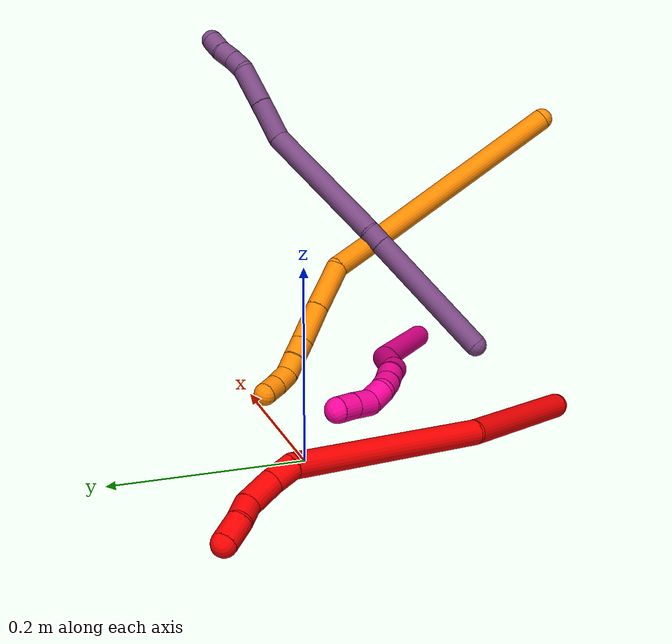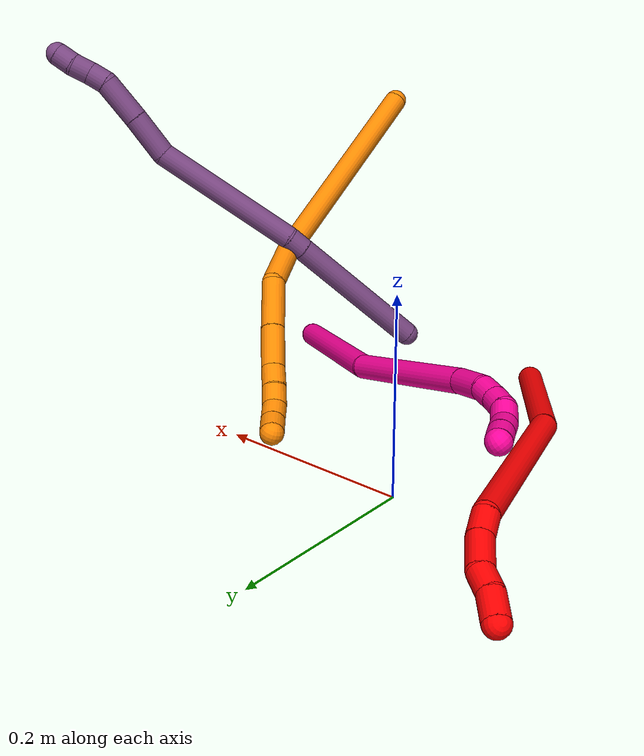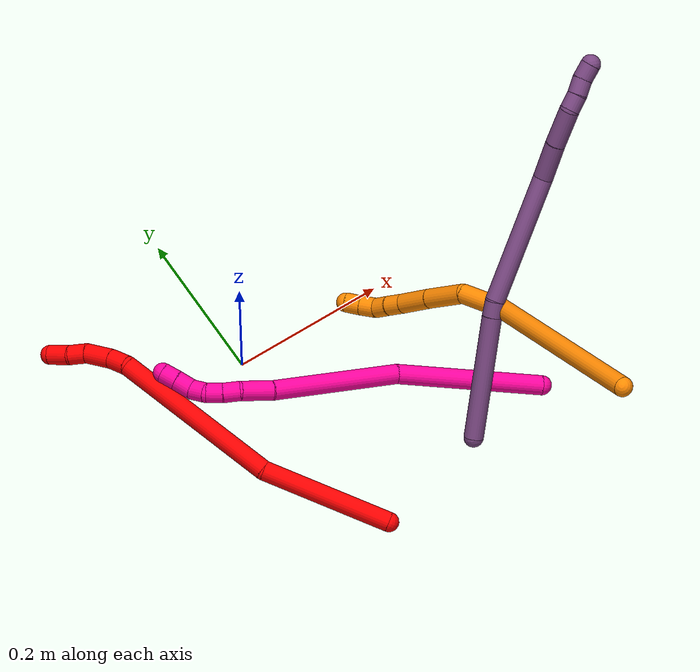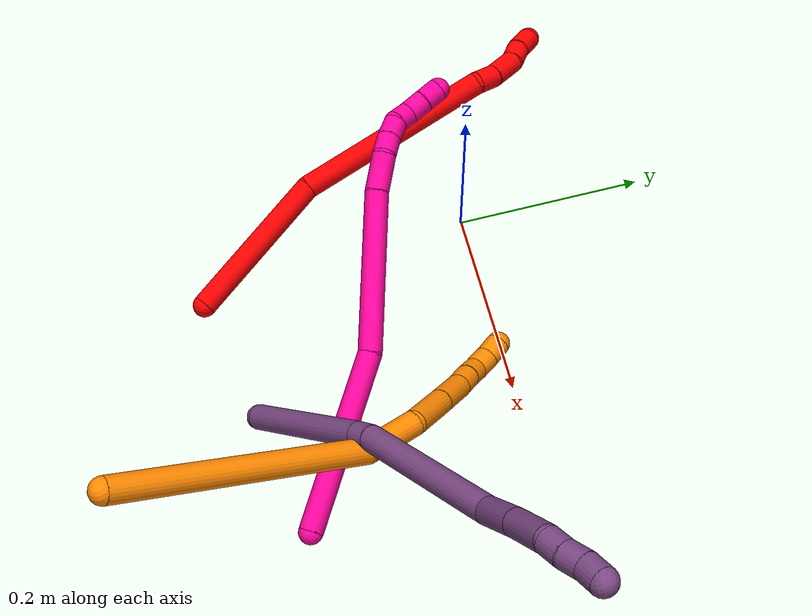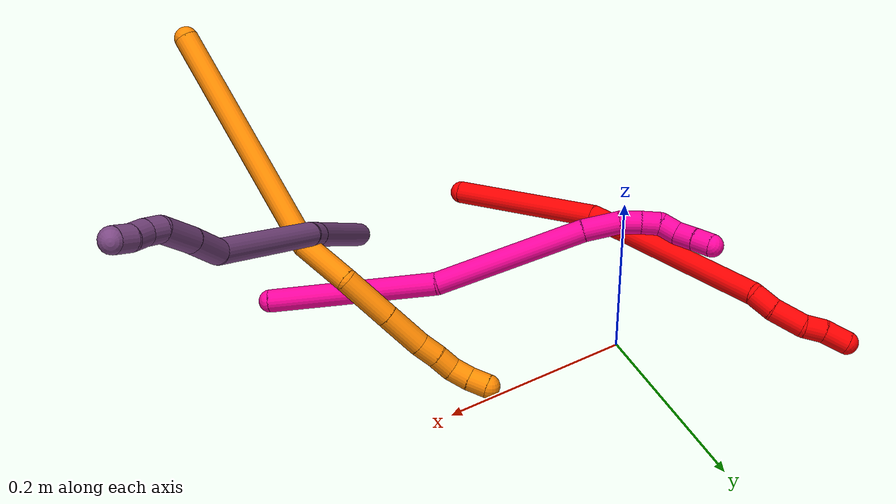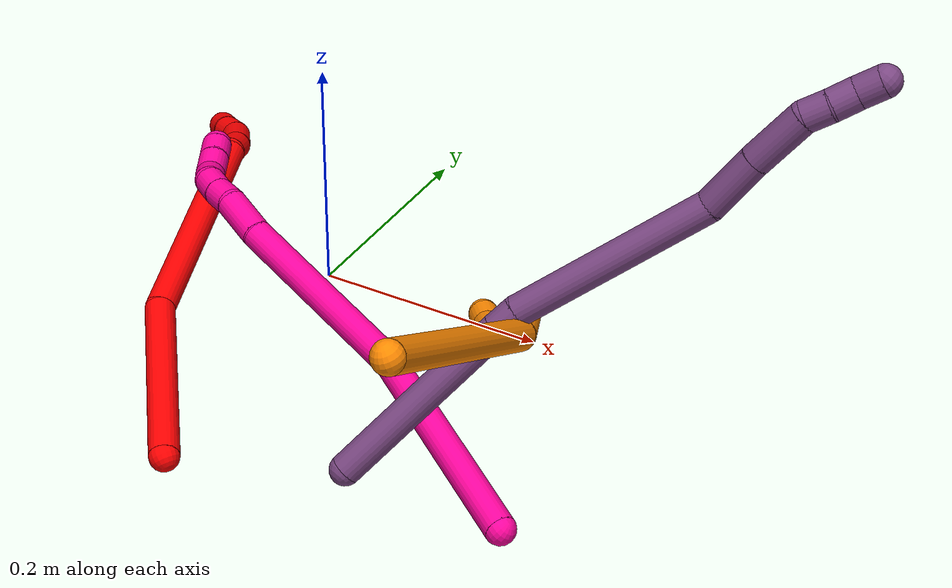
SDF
<sdf version="1.7">
 <world name="default">
  <model name="2">
   <static>0</static>
   <link name="2">
    <collision name="collision-cylinder-e_1_1_4">
     <pose>-0.015164 0.049821 -0.066 -2.49499 -0.181357 0.529995</pose>
     <geometry><cylinder><radius>0.0125</radius><length>0.168144</length></cylinder></geometry>
     <surface>
      <friction><ode><mu>1.16</mu><mu2>1.16</mu2><slip1>0</slip1><slip2>0</slip2></ode></friction>
      <contact><ode><kp>1e+06</kp><kd>1</kd><max_vel>0</max_vel><min_depth>0.001</min_depth></ode></contact>
     </surface>
    </collision>
    <visual name="visual-cylinder-e_1_1_4">
     <pose>-0.015164 0.049821 -0.066 -2.49499 -0.181357 0.529995</pose>
     <geometry><cylinder><radius>0.0125</radius><length>0.168144</length></cylinder></geometry>
     <material><ambient>1 0 0 1</ambient></material>
    </visual>
    <collision name="collision-cylinder-e_2_4_5">
     <pose>-0.078647 0.169644 -0.20134 -2.35143 -0.455944 1.01543</pose>
     <geometry><cylinder><radius>0.0125</radius><length>0.219481</length></cylinder></geometry>
     <surface>
      <friction><ode><mu>1.16</mu><mu2>1.16</mu2><slip1>0</slip1><slip2>0</slip2></ode></friction>
      <contact><ode><kp>1e+06</kp><kd>1</kd><max_vel>0</max_vel><min_depth>0.001</min_depth></ode></contact>
     </surface>
    </collision>
    <visual name="visual-cylinder-e_2_4_5">
     <pose>-0.078647 0.169644 -0.20134 -2.35143 -0.455944 1.01543</pose>
     <geometry><cylinder><radius>0.0125</radius><length>0.219481</length></cylinder></geometry>
     <material><ambient>1 0 0 1</ambient></material>
    </visual>
    <collision name="collision-cylinder-e_3_5_6">
     <pose>-0.129898 0.251446 -0.275568 -1.96364 -0.225537 0.335838</pose>
     <geometry><cylinder><radius>0.0125</radius><length>0.026208</length></cylinder></geometry>
     <surface>
      <friction><ode><mu>1.16</mu><mu2>1.16</mu2><slip1>0</slip1><slip2>0</slip2></ode></friction>
      <contact><ode><kp>1e+06</kp><kd>1</kd><max_vel>0</max_vel><min_depth>0.001</min_depth></ode></contact>
     </surface>
    </collision>
    <visual name="visual-cylinder-e_3_5_6">
     <pose>-0.129898 0.251446 -0.275568 -1.96364 -0.225537 0.335838</pose>
     <geometry><cylinder><radius>0.0125</radius><length>0.026208</length></cylinder></geometry>
     <material><ambient>1 0 0 1</ambient></material>
    </visual>
    <collision name="collision-cylinder-e_4_6_7">
     <pose>-0.133971 0.278695 -0.28926 -2.0887 -0.064187 0.110373</pose>
     <geometry><cylinder><radius>0.0125</radius><length>0.035636</length></cylinder></geometry>
     <surface>
      <friction><ode><mu>1.16</mu><mu2>1.16</mu2><slip1>0</slip1><slip2>0</slip2></ode></friction>
      <contact><ode><kp>1e+06</kp><kd>1</kd><max_vel>0</max_vel><min_depth>0.001</min_depth></ode></contact>
     </surface>
    </collision>
    <visual name="visual-cylinder-e_4_6_7">
     <pose>-0.133971 0.278695 -0.28926 -2.0887 -0.064187 0.110373</pose>
     <geometry><cylinder><radius>0.0125</radius><length>0.035636</length></cylinder></geometry>
     <material><ambient>1 0 0 1</ambient></material>
    </visual>
    <collision name="collision-cylinder-e_5_7_8">
     <pose>-0.132091 0.303021 -0.304606 -2.20599 0.267567 -0.520711</pose>
     <geometry><cylinder><radius>0.0125</radius><length>0.022868</length></cylinder></geometry>
     <surface>
      <friction><ode><mu>1.16</mu><mu2>1.16</mu2><slip1>0</slip1><slip2>0</slip2></ode></friction>
      <contact><ode><kp>1e+06</kp><kd>1</kd><max_vel>0</max_vel><min_depth>0.001</min_depth></ode></contact>
     </surface>
    </collision>
    <visual name="visual-cylinder-e_5_7_8">
     <pose>-0.132091 0.303021 -0.304606 -2.20599 0.267567 -0.520711</pose>
     <geometry><cylinder><radius>0.0125</radius><length>0.022868</length></cylinder></geometry>
     <material><ambient>1 0 0 1</ambient></material>
    </visual>
    <collision name="collision-cylinder-e_6_8_2">
     <pose>-0.127495 0.324177 -0.317316 -2.0362 0.113965 -0.184439</pose>
     <geometry><cylinder><radius>0.0125</radius><length>0.027662</length></cylinder></geometry>
     <surface>
      <friction><ode><mu>1.16</mu><mu2>1.16</mu2><slip1>0</slip1><slip2>0</slip2></ode></friction>
      <contact><ode><kp>1e+06</kp><kd>1</kd><max_vel>0</max_vel><min_depth>0.001</min_depth></ode></contact>
     </surface>
    </collision>
    <visual name="visual-cylinder-e_6_8_2">
     <pose>-0.127495 0.324177 -0.317316 -2.0362 0.113965 -0.184439</pose>
     <geometry><cylinder><radius>0.0125</radius><length>0.027662</length></cylinder></geometry>
     <material><ambient>1 0 0 1</ambient></material>
    </visual>
    <collision name="collision-sphere-2">
     <pose>-0.125922 0.336456 -0.323482 0 -0 0</pose>
     <geometry><sphere><radius>0.0125</radius></sphere></geometry>
     <surface>
      <friction><ode><mu>1.16</mu><mu2>1.16</mu2><slip1>0</slip1><slip2>0</slip2></ode></friction>
      <contact><ode><kp>1e+06</kp><kd>1</kd><max_vel>0</max_vel><min_depth>0.001</min_depth></ode></contact>
     </surface>
    </collision>
    <visual name="visual-sphere-2">
     <pose>-0.125922 0.336456 -0.323482 0 -0 0</pose>
     <geometry><sphere><radius>0.0125</radius></sphere></geometry>
     <material><ambient>1 0 0 1</ambient></material>
    </visual>
    <collision name="collision-sphere-4">
     <pose>-0.030327 0.099642 -0.132001 0 -0 0</pose>
     <geometry><sphere><radius>0.0125</radius></sphere></geometry>
     <surface>
      <friction><ode><mu>1.16</mu><mu2>1.16</mu2><slip1>0</slip1><slip2>0</slip2></ode></friction>
      <contact><ode><kp>1e+06</kp><kd>1</kd><max_vel>0</max_vel><min_depth>0.001</min_depth></ode></contact>
     </surface>
    </collision>
    <visual name="visual-sphere-4">
     <pose>-0.030327 0.099642 -0.132001 0 -0 0</pose>
     <geometry><sphere><radius>0.0125</radius></sphere></geometry>
     <material><ambient>1 0 0 1</ambient></material>
    </visual>
    <collision name="collision-sphere-1">
     <geometry><sphere><radius>0.0125</radius></sphere></geometry>
     <surface>
      <friction><ode><mu>1.16</mu><mu2>1.16</mu2><slip1>0</slip1><slip2>0</slip2></ode></friction>
      <contact><ode><kp>1e+06</kp><kd>1</kd><max_vel>0</max_vel><min_depth>0.001</min_depth></ode></contact>
     </surface>
    </collision>
    <visual name="visual-sphere-1">
     <geometry><sphere><radius>0.0125</radius></sphere></geometry>
     <material><ambient>1 0 0 1</ambient></material>
    </visual>
    <collision name="collision-sphere-8">
     <pose>-0.129068 0.311897 -0.311149 0 -0 0</pose>
     <geometry><sphere><radius>0.0125</radius></sphere></geometry>
     <surface>
      <friction><ode><mu>1.16</mu><mu2>1.16</mu2><slip1>0</slip1><slip2>0</slip2></ode></friction>
      <contact><ode><kp>1e+06</kp><kd>1</kd><max_vel>0</max_vel><min_depth>0.001</min_depth></ode></contact>
     </surface>
    </collision>
    <visual name="visual-sphere-8">
     <pose>-0.129068 0.311897 -0.311149 0 -0 0</pose>
     <geometry><sphere><radius>0.0125</radius></sphere></geometry>
     <material><ambient>1 0 0 1</ambient></material>
    </visual>
    <collision name="collision-sphere-5">
     <pose>-0.126967 0.239647 -0.270679 0 -0 0</pose>
     <geometry><sphere><radius>0.0125</radius></sphere></geometry>
     <surface>
      <friction><ode><mu>1.16</mu><mu2>1.16</mu2><slip1>0</slip1><slip2>0</slip2></ode></friction>
      <contact><ode><kp>1e+06</kp><kd>1</kd><max_vel>0</max_vel><min_depth>0.001</min_depth></ode></contact>
     </surface>
    </collision>
    <visual name="visual-sphere-5">
     <pose>-0.126967 0.239647 -0.270679 0 -0 0</pose>
     <geometry><sphere><radius>0.0125</radius></sphere></geometry>
     <material><ambient>1 0 0 1</ambient></material>
    </visual>
    <collision name="collision-sphere-6">
     <pose>-0.132828 0.263245 -0.280458 0 -0 0</pose>
     <geometry><sphere><radius>0.0125</radius></sphere></geometry>
     <surface>
      <friction><ode><mu>1.16</mu><mu2>1.16</mu2><slip1>0</slip1><slip2>0</slip2></ode></friction>
      <contact><ode><kp>1e+06</kp><kd>1</kd><max_vel>0</max_vel><min_depth>0.001</min_depth></ode></contact>
     </surface>
    </collision>
    <visual name="visual-sphere-6">
     <pose>-0.132828 0.263245 -0.280458 0 -0 0</pose>
     <geometry><sphere><radius>0.0125</radius></sphere></geometry>
     <material><ambient>1 0 0 1</ambient></material>
    </visual>
    <collision name="collision-sphere-7">
     <pose>-0.135114 0.294145 -0.298063 0 -0 0</pose>
     <geometry><sphere><radius>0.0125</radius></sphere></geometry>
     <surface>
      <friction><ode><mu>1.16</mu><mu2>1.16</mu2><slip1>0</slip1><slip2>0</slip2></ode></friction>
      <contact><ode><kp>1e+06</kp><kd>1</kd><max_vel>0</max_vel><min_depth>0.001</min_depth></ode></contact>
     </surface>
    </collision>
    <visual name="visual-sphere-7">
     <pose>-0.135114 0.294145 -0.298063 0 -0 0</pose>
     <geometry><sphere><radius>0.0125</radius></sphere></geometry>
     <material><ambient>1 0 0 1</ambient></material>
    </visual>
    <inertial>
     <pose>-0.069075 0.156059 -0.177123 0 -0 0</pose>
     <mass>0.5</mass>
     <inertia>
      <ixx>0.001644</ixx>
      <ixy>0</ixy>
      <ixz>0</ixz>
      <iyy>0.000551</iyy>
      <iyz>0</iyz>
      <izz>-0.000378</izz>
     </inertia>
    </inertial>
   </link>
   <pose>0.031894 -0.288582 0.012064 -2.30872 0.314336 -2.36888</pose>
  </model>
  <model name="18">
   <static>0</static>
   <link name="18">
    <collision name="collision-cylinder-e_1_1_4">
     <pose>-0.057688 0.070579 -0.020303 -1.85089 -0.665835 0.861085</pose>
     <geometry><cylinder><radius>0.0125</radius><length>0.186778</length></cylinder></geometry>
     <surface>
      <friction><ode><mu>1.16</mu><mu2>1.16</mu2><slip1>0</slip1><slip2>0</slip2></ode></friction>
      <contact><ode><kp>1e+06</kp><kd>1</kd><max_vel>0</max_vel><min_depth>0.001</min_depth></ode></contact>
     </surface>
    </collision>
    <visual name="visual-cylinder-e_1_1_4">
     <pose>-0.057688 0.070579 -0.020303 -1.85089 -0.665835 0.861085</pose>
     <geometry><cylinder><radius>0.0125</radius><length>0.186778</length></cylinder></geometry>
     <material><ambient>1 0.007843 0.615686 1</ambient></material>
    </visual>
    <collision name="collision-cylinder-e_2_4_5">
     <pose>-0.181581 0.18685 -0.063394 -2.03344 -0.913847 1.34284</pose>
     <geometry><cylinder><radius>0.0125</radius><length>0.167214</length></cylinder></geometry>
     <surface>
      <friction><ode><mu>1.16</mu><mu2>1.16</mu2><slip1>0</slip1><slip2>0</slip2></ode></friction>
      <contact><ode><kp>1e+06</kp><kd>1</kd><max_vel>0</max_vel><min_depth>0.001</min_depth></ode></contact>
     </surface>
    </collision>
    <visual name="visual-cylinder-e_2_4_5">
     <pose>-0.181581 0.18685 -0.063394 -2.03344 -0.913847 1.34284</pose>
     <geometry><cylinder><radius>0.0125</radius><length>0.167214</length></cylinder></geometry>
     <material><ambient>1 0.007843 0.615686 1</ambient></material>
    </visual>
    <collision name="collision-cylinder-e_3_5_6">
     <pose>-0.262144 0.246129 -0.091125 -1.91969 -0.78192 1.0639</pose>
     <geometry><cylinder><radius>0.0125</radius><length>0.040754</length></cylinder></geometry>
     <surface>
      <friction><ode><mu>1.16</mu><mu2>1.16</mu2><slip1>0</slip1><slip2>0</slip2></ode></friction>
      <contact><ode><kp>1e+06</kp><kd>1</kd><max_vel>0</max_vel><min_depth>0.001</min_depth></ode></contact>
     </surface>
    </collision>
    <visual name="visual-cylinder-e_3_5_6">
     <pose>-0.262144 0.246129 -0.091125 -1.91969 -0.78192 1.0639</pose>
     <geometry><cylinder><radius>0.0125</radius><length>0.040754</length></cylinder></geometry>
     <material><ambient>1 0.007843 0.615686 1</ambient></material>
    </visual>
    <collision name="collision-cylinder-e_4_6_7">
     <pose>-0.282215 0.267568 -0.101042 -2.13549 -0.551072 0.94925</pose>
     <geometry><cylinder><radius>0.0125</radius><length>0.021819</length></cylinder></geometry>
     <surface>
      <friction><ode><mu>1.16</mu><mu2>1.16</mu2><slip1>0</slip1><slip2>0</slip2></ode></friction>
      <contact><ode><kp>1e+06</kp><kd>1</kd><max_vel>0</max_vel><min_depth>0.001</min_depth></ode></contact>
     </surface>
    </collision>
    <visual name="visual-cylinder-e_4_6_7">
     <pose>-0.282215 0.267568 -0.101042 -2.13549 -0.551072 0.94925</pose>
     <geometry><cylinder><radius>0.0125</radius><length>0.021819</length></cylinder></geometry>
     <material><ambient>1 0.007843 0.615686 1</ambient></material>
    </visual>
    <collision name="collision-cylinder-e_5_7_8">
     <pose>-0.292961 0.283778 -0.109896 -2.0055 -0.499946 0.761089</pose>
     <geometry><cylinder><radius>0.0125</radius><length>0.021001</length></cylinder></geometry>
     <surface>
      <friction><ode><mu>1.16</mu><mu2>1.16</mu2><slip1>0</slip1><slip2>0</slip2></ode></friction>
      <contact><ode><kp>1e+06</kp><kd>1</kd><max_vel>0</max_vel><min_depth>0.001</min_depth></ode></contact>
     </surface>
    </collision>
    <visual name="visual-cylinder-e_5_7_8">
     <pose>-0.292961 0.283778 -0.109896 -2.0055 -0.499946 0.761089</pose>
     <geometry><cylinder><radius>0.0125</radius><length>0.021001</length></cylinder></geometry>
     <material><ambient>1 0.007843 0.615686 1</ambient></material>
    </visual>
    <collision name="collision-cylinder-e_6_8_9">
     <pose>-0.298367 0.30156 -0.117402 -1.93799 -0.036873 0.053683</pose>
     <geometry><cylinder><radius>0.0125</radius><length>0.020208</length></cylinder></geometry>
     <surface>
      <friction><ode><mu>1.16</mu><mu2>1.16</mu2><slip1>0</slip1><slip2>0</slip2></ode></friction>
      <contact><ode><kp>1e+06</kp><kd>1</kd><max_vel>0</max_vel><min_depth>0.001</min_depth></ode></contact>
     </surface>
    </collision>
    <visual name="visual-cylinder-e_6_8_9">
     <pose>-0.298367 0.30156 -0.117402 -1.93799 -0.036873 0.053683</pose>
     <geometry><cylinder><radius>0.0125</radius><length>0.020208</length></cylinder></geometry>
     <material><ambient>1 0.007843 0.615686 1</ambient></material>
    </visual>
    <collision name="collision-cylinder-e_7_9_10">
     <pose>-0.300913 0.321818 -0.120563 -1.52798 -0.197843 0.1896</pose>
     <geometry><cylinder><radius>0.0125</radius><length>0.022119</length></cylinder></geometry>
     <surface>
      <friction><ode><mu>1.16</mu><mu2>1.16</mu2><slip1>0</slip1><slip2>0</slip2></ode></friction>
      <contact><ode><kp>1e+06</kp><kd>1</kd><max_vel>0</max_vel><min_depth>0.001</min_depth></ode></contact>
     </surface>
    </collision>
    <visual name="visual-cylinder-e_7_9_10">
     <pose>-0.300913 0.321818 -0.120563 -1.52798 -0.197843 0.1896</pose>
     <geometry><cylinder><radius>0.0125</radius><length>0.022119</length></cylinder></geometry>
     <material><ambient>1 0.007843 0.615686 1</ambient></material>
    </visual>
    <collision name="collision-cylinder-e_8_10_2">
     <pose>-0.304944 0.342532 -0.120187 -1.57971 -0.185786 0.187441</pose>
     <geometry><cylinder><radius>0.0125</radius><length>0.020107</length></cylinder></geometry>
     <surface>
      <friction><ode><mu>1.16</mu><mu2>1.16</mu2><slip1>0</slip1><slip2>0</slip2></ode></friction>
      <contact><ode><kp>1e+06</kp><kd>1</kd><max_vel>0</max_vel><min_depth>0.001</min_depth></ode></contact>
     </surface>
    </collision>
    <visual name="visual-cylinder-e_8_10_2">
     <pose>-0.304944 0.342532 -0.120187 -1.57971 -0.185786 0.187441</pose>
     <geometry><cylinder><radius>0.0125</radius><length>0.020107</length></cylinder></geometry>
     <material><ambient>1 0.007843 0.615686 1</ambient></material>
    </visual>
    <collision name="collision-sphere-2">
     <pose>-0.306801 0.352412 -0.120275 0 -0 0</pose>
     <geometry><sphere><radius>0.0125</radius></sphere></geometry>
     <surface>
      <friction><ode><mu>1.16</mu><mu2>1.16</mu2><slip1>0</slip1><slip2>0</slip2></ode></friction>
      <contact><ode><kp>1e+06</kp><kd>1</kd><max_vel>0</max_vel><min_depth>0.001</min_depth></ode></contact>
     </surface>
    </collision>
    <visual name="visual-sphere-2">
     <pose>-0.306801 0.352412 -0.120275 0 -0 0</pose>
     <geometry><sphere><radius>0.0125</radius></sphere></geometry>
     <material><ambient>1 0.007843 0.615686 1</ambient></material>
    </visual>
    <collision name="collision-sphere-10">
     <pose>-0.303087 0.332652 -0.120099 0 -0 0</pose>
     <geometry><sphere><radius>0.0125</radius></sphere></geometry>
     <surface>
      <friction><ode><mu>1.16</mu><mu2>1.16</mu2><slip1>0</slip1><slip2>0</slip2></ode></friction>
      <contact><ode><kp>1e+06</kp><kd>1</kd><max_vel>0</max_vel><min_depth>0.001</min_depth></ode></contact>
     </surface>
    </collision>
    <visual name="visual-sphere-10">
     <pose>-0.303087 0.332652 -0.120099 0 -0 0</pose>
     <geometry><sphere><radius>0.0125</radius></sphere></geometry>
     <material><ambient>1 0.007843 0.615686 1</ambient></material>
    </visual>
    <collision name="collision-sphere-9">
     <pose>-0.298739 0.310985 -0.121027 0 -0 0</pose>
     <geometry><sphere><radius>0.0125</radius></sphere></geometry>
     <surface>
      <friction><ode><mu>1.16</mu><mu2>1.16</mu2><slip1>0</slip1><slip2>0</slip2></ode></friction>
      <contact><ode><kp>1e+06</kp><kd>1</kd><max_vel>0</max_vel><min_depth>0.001</min_depth></ode></contact>
     </surface>
    </collision>
    <visual name="visual-sphere-9">
     <pose>-0.298739 0.310985 -0.121027 0 -0 0</pose>
     <geometry><sphere><radius>0.0125</radius></sphere></geometry>
     <material><ambient>1 0.007843 0.615686 1</ambient></material>
    </visual>
    <collision name="collision-sphere-4">
     <pose>-0.115376 0.141158 -0.040605 0 -0 0</pose>
     <geometry><sphere><radius>0.0125</radius></sphere></geometry>
     <surface>
      <friction><ode><mu>1.16</mu><mu2>1.16</mu2><slip1>0</slip1><slip2>0</slip2></ode></friction>
      <contact><ode><kp>1e+06</kp><kd>1</kd><max_vel>0</max_vel><min_depth>0.001</min_depth></ode></contact>
     </surface>
    </collision>
    <visual name="visual-sphere-4">
     <pose>-0.115376 0.141158 -0.040605 0 -0 0</pose>
     <geometry><sphere><radius>0.0125</radius></sphere></geometry>
     <material><ambient>1 0.007843 0.615686 1</ambient></material>
    </visual>
    <collision name="collision-sphere-1">
     <geometry><sphere><radius>0.0125</radius></sphere></geometry>
     <surface>
      <friction><ode><mu>1.16</mu><mu2>1.16</mu2><slip1>0</slip1><slip2>0</slip2></ode></friction>
      <contact><ode><kp>1e+06</kp><kd>1</kd><max_vel>0</max_vel><min_depth>0.001</min_depth></ode></contact>
     </surface>
    </collision>
    <visual name="visual-sphere-1">
     <geometry><sphere><radius>0.0125</radius></sphere></geometry>
     <material><ambient>1 0.007843 0.615686 1</ambient></material>
    </visual>
    <collision name="collision-sphere-8">
     <pose>-0.297994 0.292136 -0.113777 0 -0 0</pose>
     <geometry><sphere><radius>0.0125</radius></sphere></geometry>
     <surface>
      <friction><ode><mu>1.16</mu><mu2>1.16</mu2><slip1>0</slip1><slip2>0</slip2></ode></friction>
      <contact><ode><kp>1e+06</kp><kd>1</kd><max_vel>0</max_vel><min_depth>0.001</min_depth></ode></contact>
     </surface>
    </collision>
    <visual name="visual-sphere-8">
     <pose>-0.297994 0.292136 -0.113777 0 -0 0</pose>
     <geometry><sphere><radius>0.0125</radius></sphere></geometry>
     <material><ambient>1 0.007843 0.615686 1</ambient></material>
    </visual>
    <collision name="collision-sphere-5">
     <pose>-0.247786 0.232542 -0.086182 0 -0 0</pose>
     <geometry><sphere><radius>0.0125</radius></sphere></geometry>
     <surface>
      <friction><ode><mu>1.16</mu><mu2>1.16</mu2><slip1>0</slip1><slip2>0</slip2></ode></friction>
      <contact><ode><kp>1e+06</kp><kd>1</kd><max_vel>0</max_vel><min_depth>0.001</min_depth></ode></contact>
     </surface>
    </collision>
    <visual name="visual-sphere-5">
     <pose>-0.247786 0.232542 -0.086182 0 -0 0</pose>
     <geometry><sphere><radius>0.0125</radius></sphere></geometry>
     <material><ambient>1 0.007843 0.615686 1</ambient></material>
    </visual>
    <collision name="collision-sphere-6">
     <pose>-0.276503 0.259717 -0.096068 0 -0 0</pose>
     <geometry><sphere><radius>0.0125</radius></sphere></geometry>
     <surface>
      <friction><ode><mu>1.16</mu><mu2>1.16</mu2><slip1>0</slip1><slip2>0</slip2></ode></friction>
      <contact><ode><kp>1e+06</kp><kd>1</kd><max_vel>0</max_vel><min_depth>0.001</min_depth></ode></contact>
     </surface>
    </collision>
    <visual name="visual-sphere-6">
     <pose>-0.276503 0.259717 -0.096068 0 -0 0</pose>
     <geometry><sphere><radius>0.0125</radius></sphere></geometry>
     <material><ambient>1 0.007843 0.615686 1</ambient></material>
    </visual>
    <collision name="collision-sphere-7">
     <pose>-0.287927 0.27542 -0.106016 0 -0 0</pose>
     <geometry><sphere><radius>0.0125</radius></sphere></geometry>
     <surface>
      <friction><ode><mu>1.16</mu><mu2>1.16</mu2><slip1>0</slip1><slip2>0</slip2></ode></friction>
      <contact><ode><kp>1e+06</kp><kd>1</kd><max_vel>0</max_vel><min_depth>0.001</min_depth></ode></contact>
     </surface>
    </collision>
    <visual name="visual-sphere-7">
     <pose>-0.287927 0.27542 -0.106016 0 -0 0</pose>
     <geometry><sphere><radius>0.0125</radius></sphere></geometry>
     <material><ambient>1 0.007843 0.615686 1</ambient></material>
    </visual>
    <inertial>
     <pose>-0.165896 0.172709 -0.060149 0 -0 0</pose>
     <mass>0.5</mass>
     <inertia><ixx>0.000893</ixx><ixy>0</ixy><ixz>0</ixz><iyy>0.000984</iyy><iyz>0</iyz><izz>7e-06</izz></inertia>
    </inertial>
   </link>
   <pose>0.29799 -0.23524 0.010942 -0.057665 0.682209 0.286445</pose>
  </model>
  <model name="19">
   <static>0</static>
   <link name="19">
    <collision name="collision-cylinder-e_1_1_4">
     <pose>0.050779 -0.090047 -0.074916 2.26473 0.409051 0.833028</pose>
     <geometry><cylinder><radius>0.0125</radius><length>0.255337</length></cylinder></geometry>
     <surface>
      <friction><ode><mu>1.16</mu><mu2>1.16</mu2><slip1>0</slip1><slip2>0</slip2></ode></friction>
      <contact><ode><kp>1e+06</kp><kd>1</kd><max_vel>0</max_vel><min_depth>0.001</min_depth></ode></contact>
     </surface>
    </collision>
    <visual name="visual-cylinder-e_1_1_4">
     <pose>0.050779 -0.090047 -0.074916 2.26473 0.409051 0.833028</pose>
     <geometry><cylinder><radius>0.0125</radius><length>0.255337</length></cylinder></geometry>
     <material><ambient>0.996078 0.537255 0 1</ambient></material>
    </visual>
    <collision name="collision-cylinder-e_2_4_5">
     <pose>0.119719 -0.199736 -0.159591 2.03189 0.69159 1.05307</pose>
     <geometry><cylinder><radius>0.0125</radius><length>0.056953</length></cylinder></geometry>
     <surface>
      <friction><ode><mu>1.16</mu><mu2>1.16</mu2><slip1>0</slip1><slip2>0</slip2></ode></friction>
      <contact><ode><kp>1e+06</kp><kd>1</kd><max_vel>0</max_vel><min_depth>0.001</min_depth></ode></contact>
     </surface>
    </collision>
    <visual name="visual-cylinder-e_2_4_5">
     <pose>0.119719 -0.199736 -0.159591 2.03189 0.69159 1.05307</pose>
     <geometry><cylinder><radius>0.0125</radius><length>0.056953</length></cylinder></geometry>
     <material><ambient>0.996078 0.537255 0 1</ambient></material>
    </visual>
    <collision name="collision-cylinder-e_3_5_6">
     <pose>0.159117 -0.22867 -0.185463 2.61857 0.851477 2.07523</pose>
     <geometry><cylinder><radius>0.0125</radius><length>0.056462</length></cylinder></geometry>
     <surface>
      <friction><ode><mu>1.16</mu><mu2>1.16</mu2><slip1>0</slip1><slip2>0</slip2></ode></friction>
      <contact><ode><kp>1e+06</kp><kd>1</kd><max_vel>0</max_vel><min_depth>0.001</min_depth></ode></contact>
     </surface>
    </collision>
    <visual name="visual-cylinder-e_3_5_6">
     <pose>0.159117 -0.22867 -0.185463 2.61857 0.851477 2.07523</pose>
     <geometry><cylinder><radius>0.0125</radius><length>0.056462</length></cylinder></geometry>
     <material><ambient>0.996078 0.537255 0 1</ambient></material>
    </visual>
    <collision name="collision-cylinder-e_4_6_7">
     <pose>0.197565 -0.244792 -0.214777 2.66406 0.858492 2.16407</pose>
     <geometry><cylinder><radius>0.0125</radius><length>0.045481</length></cylinder></geometry>
     <surface>
      <friction><ode><mu>1.16</mu><mu2>1.16</mu2><slip1>0</slip1><slip2>0</slip2></ode></friction>
      <contact><ode><kp>1e+06</kp><kd>1</kd><max_vel>0</max_vel><min_depth>0.001</min_depth></ode></contact>
     </surface>
    </collision>
    <visual name="visual-cylinder-e_4_6_7">
     <pose>0.197565 -0.244792 -0.214777 2.66406 0.858492 2.16407</pose>
     <geometry><cylinder><radius>0.0125</radius><length>0.045481</length></cylinder></geometry>
     <material><ambient>0.996078 0.537255 0 1</ambient></material>
    </visual>
    <collision name="collision-cylinder-e_5_7_8">
     <pose>0.223845 -0.255248 -0.233409 2.55306 0.946698 2.07299</pose>
     <geometry><cylinder><radius>0.0125</radius><length>0.022352</length></cylinder></geometry>
     <surface>
      <friction><ode><mu>1.16</mu><mu2>1.16</mu2><slip1>0</slip1><slip2>0</slip2></ode></friction>
      <contact><ode><kp>1e+06</kp><kd>1</kd><max_vel>0</max_vel><min_depth>0.001</min_depth></ode></contact>
     </surface>
    </collision>
    <visual name="visual-cylinder-e_5_7_8">
     <pose>0.223845 -0.255248 -0.233409 2.55306 0.946698 2.07299</pose>
     <geometry><cylinder><radius>0.0125</radius><length>0.022352</length></cylinder></geometry>
     <material><ambient>0.996078 0.537255 0 1</ambient></material>
    </visual>
    <collision name="collision-cylinder-e_6_8_9">
     <pose>0.241115 -0.262131 -0.244853 2.64502 0.875816 2.1491</pose>
     <geometry><cylinder><radius>0.0125</radius><length>0.021353</length></cylinder></geometry>
     <surface>
      <friction><ode><mu>1.16</mu><mu2>1.16</mu2><slip1>0</slip1><slip2>0</slip2></ode></friction>
      <contact><ode><kp>1e+06</kp><kd>1</kd><max_vel>0</max_vel><min_depth>0.001</min_depth></ode></contact>
     </surface>
    </collision>
    <visual name="visual-cylinder-e_6_8_9">
     <pose>0.241115 -0.262131 -0.244853 2.64502 0.875816 2.1491</pose>
     <geometry><cylinder><radius>0.0125</radius><length>0.021353</length></cylinder></geometry>
     <material><ambient>0.996078 0.537255 0 1</ambient></material>
    </visual>
    <collision name="collision-cylinder-e_7_9_10">
     <pose>0.257681 -0.271379 -0.253504 1.98583 0.906791 1.28335</pose>
     <geometry><cylinder><radius>0.0125</radius><length>0.021245</length></cylinder></geometry>
     <surface>
      <friction><ode><mu>1.16</mu><mu2>1.16</mu2><slip1>0</slip1><slip2>0</slip2></ode></friction>
      <contact><ode><kp>1e+06</kp><kd>1</kd><max_vel>0</max_vel><min_depth>0.001</min_depth></ode></contact>
     </surface>
    </collision>
    <visual name="visual-cylinder-e_7_9_10">
     <pose>0.257681 -0.271379 -0.253504 1.98583 0.906791 1.28335</pose>
     <geometry><cylinder><radius>0.0125</radius><length>0.021245</length></cylinder></geometry>
     <material><ambient>0.996078 0.537255 0 1</ambient></material>
    </visual>
    <collision name="collision-cylinder-e_8_10_2">
     <pose>0.274368 -0.283536 -0.257172 1.73614 0.926475 1.06568</pose>
     <geometry><cylinder><radius>0.0125</radius><length>0.020817</length></cylinder></geometry>
     <surface>
      <friction><ode><mu>1.16</mu><mu2>1.16</mu2><slip1>0</slip1><slip2>0</slip2></ode></friction>
      <contact><ode><kp>1e+06</kp><kd>1</kd><max_vel>0</max_vel><min_depth>0.001</min_depth></ode></contact>
     </surface>
    </collision>
    <visual name="visual-cylinder-e_8_10_2">
     <pose>0.274368 -0.283536 -0.257172 1.73614 0.926475 1.06568</pose>
     <geometry><cylinder><radius>0.0125</radius><length>0.020817</length></cylinder></geometry>
     <material><ambient>0.996078 0.537255 0 1</ambient></material>
    </visual>
    <collision name="collision-sphere-2">
     <pose>0.28269 -0.289703 -0.258201 0 -0 0</pose>
     <geometry><sphere><radius>0.0125</radius></sphere></geometry>
     <surface>
      <friction><ode><mu>1.16</mu><mu2>1.16</mu2><slip1>0</slip1><slip2>0</slip2></ode></friction>
      <contact><ode><kp>1e+06</kp><kd>1</kd><max_vel>0</max_vel><min_depth>0.001</min_depth></ode></contact>
     </surface>
    </collision>
    <visual name="visual-sphere-2">
     <pose>0.28269 -0.289703 -0.258201 0 -0 0</pose>
     <geometry><sphere><radius>0.0125</radius></sphere></geometry>
     <material><ambient>0.996078 0.537255 0 1</ambient></material>
    </visual>
    <collision name="collision-sphere-10">
     <pose>0.266046 -0.277369 -0.256143 0 -0 0</pose>
     <geometry><sphere><radius>0.0125</radius></sphere></geometry>
     <surface>
      <friction><ode><mu>1.16</mu><mu2>1.16</mu2><slip1>0</slip1><slip2>0</slip2></ode></friction>
      <contact><ode><kp>1e+06</kp><kd>1</kd><max_vel>0</max_vel><min_depth>0.001</min_depth></ode></contact>
     </surface>
    </collision>
    <visual name="visual-sphere-10">
     <pose>0.266046 -0.277369 -0.256143 0 -0 0</pose>
     <geometry><sphere><radius>0.0125</radius></sphere></geometry>
     <material><ambient>0.996078 0.537255 0 1</ambient></material>
    </visual>
    <collision name="collision-sphere-9">
     <pose>0.249315 -0.265388 -0.250864 0 -0 0</pose>
     <geometry><sphere><radius>0.0125</radius></sphere></geometry>
     <surface>
      <friction><ode><mu>1.16</mu><mu2>1.16</mu2><slip1>0</slip1><slip2>0</slip2></ode></friction>
      <contact><ode><kp>1e+06</kp><kd>1</kd><max_vel>0</max_vel><min_depth>0.001</min_depth></ode></contact>
     </surface>
    </collision>
    <visual name="visual-sphere-9">
     <pose>0.249315 -0.265388 -0.250864 0 -0 0</pose>
     <geometry><sphere><radius>0.0125</radius></sphere></geometry>
     <material><ambient>0.996078 0.537255 0 1</ambient></material>
    </visual>
    <collision name="collision-sphere-4">
     <pose>0.101558 -0.180093 -0.149832 0 -0 0</pose>
     <geometry><sphere><radius>0.0125</radius></sphere></geometry>
     <surface>
      <friction><ode><mu>1.16</mu><mu2>1.16</mu2><slip1>0</slip1><slip2>0</slip2></ode></friction>
      <contact><ode><kp>1e+06</kp><kd>1</kd><max_vel>0</max_vel><min_depth>0.001</min_depth></ode></contact>
     </surface>
    </collision>
    <visual name="visual-sphere-4">
     <pose>0.101558 -0.180093 -0.149832 0 -0 0</pose>
     <geometry><sphere><radius>0.0125</radius></sphere></geometry>
     <material><ambient>0.996078 0.537255 0 1</ambient></material>
    </visual>
    <collision name="collision-sphere-1">
     <geometry><sphere><radius>0.0125</radius></sphere></geometry>
     <surface>
      <friction><ode><mu>1.16</mu><mu2>1.16</mu2><slip1>0</slip1><slip2>0</slip2></ode></friction>
      <contact><ode><kp>1e+06</kp><kd>1</kd><max_vel>0</max_vel><min_depth>0.001</min_depth></ode></contact>
     </surface>
    </collision>
    <visual name="visual-sphere-1">
     <geometry><sphere><radius>0.0125</radius></sphere></geometry>
     <material><ambient>0.996078 0.537255 0 1</ambient></material>
    </visual>
    <collision name="collision-sphere-8">
     <pose>0.232914 -0.258874 -0.238841 0 -0 0</pose>
     <geometry><sphere><radius>0.0125</radius></sphere></geometry>
     <surface>
      <friction><ode><mu>1.16</mu><mu2>1.16</mu2><slip1>0</slip1><slip2>0</slip2></ode></friction>
      <contact><ode><kp>1e+06</kp><kd>1</kd><max_vel>0</max_vel><min_depth>0.001</min_depth></ode></contact>
     </surface>
    </collision>
    <visual name="visual-sphere-8">
     <pose>0.232914 -0.258874 -0.238841 0 -0 0</pose>
     <geometry><sphere><radius>0.0125</radius></sphere></geometry>
     <material><ambient>0.996078 0.537255 0 1</ambient></material>
    </visual>
    <collision name="collision-sphere-5">
     <pose>0.13788 -0.219379 -0.169349 0 -0 0</pose>
     <geometry><sphere><radius>0.0125</radius></sphere></geometry>
     <surface>
      <friction><ode><mu>1.16</mu><mu2>1.16</mu2><slip1>0</slip1><slip2>0</slip2></ode></friction>
      <contact><ode><kp>1e+06</kp><kd>1</kd><max_vel>0</max_vel><min_depth>0.001</min_depth></ode></contact>
     </surface>
    </collision>
    <visual name="visual-sphere-5">
     <pose>0.13788 -0.219379 -0.169349 0 -0 0</pose>
     <geometry><sphere><radius>0.0125</radius></sphere></geometry>
     <material><ambient>0.996078 0.537255 0 1</ambient></material>
    </visual>
    <collision name="collision-sphere-6">
     <pose>0.180354 -0.237961 -0.201577 0 -0 0</pose>
     <geometry><sphere><radius>0.0125</radius></sphere></geometry>
     <surface>
      <friction><ode><mu>1.16</mu><mu2>1.16</mu2><slip1>0</slip1><slip2>0</slip2></ode></friction>
      <contact><ode><kp>1e+06</kp><kd>1</kd><max_vel>0</max_vel><min_depth>0.001</min_depth></ode></contact>
     </surface>
    </collision>
    <visual name="visual-sphere-6">
     <pose>0.180354 -0.237961 -0.201577 0 -0 0</pose>
     <geometry><sphere><radius>0.0125</radius></sphere></geometry>
     <material><ambient>0.996078 0.537255 0 1</ambient></material>
    </visual>
    <collision name="collision-sphere-7">
     <pose>0.214776 -0.251622 -0.227977 0 -0 0</pose>
     <geometry><sphere><radius>0.0125</radius></sphere></geometry>
     <surface>
      <friction><ode><mu>1.16</mu><mu2>1.16</mu2><slip1>0</slip1><slip2>0</slip2></ode></friction>
      <contact><ode><kp>1e+06</kp><kd>1</kd><max_vel>0</max_vel><min_depth>0.001</min_depth></ode></contact>
     </surface>
    </collision>
    <visual name="visual-sphere-7">
     <pose>0.214776 -0.251622 -0.227977 0 -0 0</pose>
     <geometry><sphere><radius>0.0125</radius></sphere></geometry>
     <material><ambient>0.996078 0.537255 0 1</ambient></material>
    </visual>
    <inertial>
     <pose>0.118183 -0.162766 -0.139285 0 -0 0</pose>
     <mass>0.5</mass>
     <inertia>
      <ixx>0.001861</ixx>
      <ixy>0</ixy>
      <ixz>0</ixz>
      <iyy>0.000701</iyy>
      <iyz>0</iyz>
      <izz>0.000397</izz>
     </inertia>
    </inertial>
   </link>
   <pose>0.297401 -0.388405 0.265195 -0.229589 0.249431 2.90732</pose>
  </model>
  <model name="20">
   <static>0</static>
   <link name="20">
    <collision name="collision-cylinder-e_1_1_4">
     <pose>0.025761 0.006328 0.074345 -0.084916 0.332446 -0.014255</pose>
     <geometry><cylinder><radius>0.0125</radius><length>0.157872</length></cylinder></geometry>
     <surface>
      <friction><ode><mu>1.16</mu><mu2>1.16</mu2><slip1>0</slip1><slip2>0</slip2></ode></friction>
      <contact><ode><kp>1e+06</kp><kd>1</kd><max_vel>0</max_vel><min_depth>0.001</min_depth></ode></contact>
     </surface>
    </collision>
    <visual name="visual-cylinder-e_1_1_4">
     <pose>0.025761 0.006328 0.074345 -0.084916 0.332446 -0.014255</pose>
     <geometry><cylinder><radius>0.0125</radius><length>0.157872</length></cylinder></geometry>
     <material><ambient>0.478431 0.278431 0.509804 1</ambient></material>
    </visual>
    <collision name="collision-cylinder-e_2_4_5">
     <pose>0.055162 0.013779 0.158121 -0.118433 0.365904 -0.021937</pose>
     <geometry><cylinder><radius>0.0125</radius><length>0.020342</length></cylinder></geometry>
     <surface>
      <friction><ode><mu>1.16</mu><mu2>1.16</mu2><slip1>0</slip1><slip2>0</slip2></ode></friction>
      <contact><ode><kp>1e+06</kp><kd>1</kd><max_vel>0</max_vel><min_depth>0.001</min_depth></ode></contact>
     </surface>
    </collision>
    <visual name="visual-cylinder-e_2_4_5">
     <pose>0.055162 0.013779 0.158121 -0.118433 0.365904 -0.021937</pose>
     <geometry><cylinder><radius>0.0125</radius><length>0.020342</length></cylinder></geometry>
     <material><ambient>0.478431 0.278431 0.509804 1</ambient></material>
    </visual>
    <collision name="collision-cylinder-e_3_5_6">
     <pose>0.092649 0.039694 0.237715 -0.339667 0.426892 -0.074304</pose>
     <geometry><cylinder><radius>0.0125</radius><length>0.163502</length></cylinder></geometry>
     <surface>
      <friction><ode><mu>1.16</mu><mu2>1.16</mu2><slip1>0</slip1><slip2>0</slip2></ode></friction>
      <contact><ode><kp>1e+06</kp><kd>1</kd><max_vel>0</max_vel><min_depth>0.001</min_depth></ode></contact>
     </surface>
    </collision>
    <visual name="visual-cylinder-e_3_5_6">
     <pose>0.092649 0.039694 0.237715 -0.339667 0.426892 -0.074304</pose>
     <geometry><cylinder><radius>0.0125</radius><length>0.163502</length></cylinder></geometry>
     <material><ambient>0.478431 0.278431 0.509804 1</ambient></material>
    </visual>
    <collision name="collision-cylinder-e_4_6_7">
     <pose>0.140168 0.064532 0.327825 -0.002266 0.600813 -0.000702</pose>
     <geometry><cylinder><radius>0.0125</radius><length>0.048364</length></cylinder></geometry>
     <surface>
      <friction><ode><mu>1.16</mu><mu2>1.16</mu2><slip1>0</slip1><slip2>0</slip2></ode></friction>
      <contact><ode><kp>1e+06</kp><kd>1</kd><max_vel>0</max_vel><min_depth>0.001</min_depth></ode></contact>
     </surface>
    </collision>
    <visual name="visual-cylinder-e_4_6_7">
     <pose>0.140168 0.064532 0.327825 -0.002266 0.600813 -0.000702</pose>
     <geometry><cylinder><radius>0.0125</radius><length>0.048364</length></cylinder></geometry>
     <material><ambient>0.478431 0.278431 0.509804 1</ambient></material>
    </visual>
    <collision name="collision-cylinder-e_5_7_8">
     <pose>0.167797 0.065991 0.367473 -0.071636 0.615228 -0.022767</pose>
     <geometry><cylinder><radius>0.0125</radius><length>0.048373</length></cylinder></geometry>
     <surface>
      <friction><ode><mu>1.16</mu><mu2>1.16</mu2><slip1>0</slip1><slip2>0</slip2></ode></friction>
      <contact><ode><kp>1e+06</kp><kd>1</kd><max_vel>0</max_vel><min_depth>0.001</min_depth></ode></contact>
     </surface>
    </collision>
    <visual name="visual-cylinder-e_5_7_8">
     <pose>0.167797 0.065991 0.367473 -0.071636 0.615228 -0.022767</pose>
     <geometry><cylinder><radius>0.0125</radius><length>0.048373</length></cylinder></geometry>
     <material><ambient>0.478431 0.278431 0.509804 1</ambient></material>
    </visual>
    <collision name="collision-cylinder-e_6_8_9">
     <pose>0.186264 0.071525 0.395415 -0.463648 0.454929 -0.109177</pose>
     <geometry><cylinder><radius>0.0125</radius><length>0.020514</length></cylinder></geometry>
     <surface>
      <friction><ode><mu>1.16</mu><mu2>1.16</mu2><slip1>0</slip1><slip2>0</slip2></ode></friction>
      <contact><ode><kp>1e+06</kp><kd>1</kd><max_vel>0</max_vel><min_depth>0.001</min_depth></ode></contact>
     </surface>
    </collision>
    <visual name="visual-cylinder-e_6_8_9">
     <pose>0.186264 0.071525 0.395415 -0.463648 0.454929 -0.109177</pose>
     <geometry><cylinder><radius>0.0125</radius><length>0.020514</length></cylinder></geometry>
     <material><ambient>0.478431 0.278431 0.509804 1</ambient></material>
    </visual>
    <collision name="collision-cylinder-e_7_9_10">
     <pose>0.193933 0.079512 0.412583 -0.408713 0.314272 -0.065651</pose>
     <geometry><cylinder><radius>0.0125</radius><length>0.020458</length></cylinder></geometry>
     <surface>
      <friction><ode><mu>1.16</mu><mu2>1.16</mu2><slip1>0</slip1><slip2>0</slip2></ode></friction>
      <contact><ode><kp>1e+06</kp><kd>1</kd><max_vel>0</max_vel><min_depth>0.001</min_depth></ode></contact>
     </surface>
    </collision>
    <visual name="visual-cylinder-e_7_9_10">
     <pose>0.193933 0.079512 0.412583 -0.408713 0.314272 -0.065651</pose>
     <geometry><cylinder><radius>0.0125</radius><length>0.020458</length></cylinder></geometry>
     <material><ambient>0.478431 0.278431 0.509804 1</ambient></material>
    </visual>
    <collision name="collision-cylinder-e_8_10_2">
     <pose>0.202282 0.087216 0.429523 -0.446638 0.528445 -0.122732</pose>
     <geometry><cylinder><radius>0.0125</radius><length>0.020575</length></cylinder></geometry>
     <surface>
      <friction><ode><mu>1.16</mu><mu2>1.16</mu2><slip1>0</slip1><slip2>0</slip2></ode></friction>
      <contact><ode><kp>1e+06</kp><kd>1</kd><max_vel>0</max_vel><min_depth>0.001</min_depth></ode></contact>
     </surface>
    </collision>
    <visual name="visual-cylinder-e_8_10_2">
     <pose>0.202282 0.087216 0.429523 -0.446638 0.528445 -0.122732</pose>
     <geometry><cylinder><radius>0.0125</radius><length>0.020575</length></cylinder></geometry>
     <material><ambient>0.478431 0.278431 0.509804 1</ambient></material>
    </visual>
    <collision name="collision-sphere-2">
     <pose>0.207468 0.091053 0.437536 0 -0 0</pose>
     <geometry><sphere><radius>0.0125</radius></sphere></geometry>
     <surface>
      <friction><ode><mu>1.16</mu><mu2>1.16</mu2><slip1>0</slip1><slip2>0</slip2></ode></friction>
      <contact><ode><kp>1e+06</kp><kd>1</kd><max_vel>0</max_vel><min_depth>0.001</min_depth></ode></contact>
     </surface>
    </collision>
    <visual name="visual-sphere-2">
     <pose>0.207468 0.091053 0.437536 0 -0 0</pose>
     <geometry><sphere><radius>0.0125</radius></sphere></geometry>
     <material><ambient>0.478431 0.278431 0.509804 1</ambient></material>
    </visual>
    <collision name="collision-sphere-10">
     <pose>0.197095 0.083378 0.42151 0 -0 0</pose>
     <geometry><sphere><radius>0.0125</radius></sphere></geometry>
     <surface>
      <friction><ode><mu>1.16</mu><mu2>1.16</mu2><slip1>0</slip1><slip2>0</slip2></ode></friction>
      <contact><ode><kp>1e+06</kp><kd>1</kd><max_vel>0</max_vel><min_depth>0.001</min_depth></ode></contact>
     </surface>
    </collision>
    <visual name="visual-sphere-10">
     <pose>0.197095 0.083378 0.42151 0 -0 0</pose>
     <geometry><sphere><radius>0.0125</radius></sphere></geometry>
     <material><ambient>0.478431 0.278431 0.509804 1</ambient></material>
    </visual>
    <collision name="collision-sphere-9">
     <pose>0.190771 0.075646 0.403657 0 -0 0</pose>
     <geometry><sphere><radius>0.0125</radius></sphere></geometry>
     <surface>
      <friction><ode><mu>1.16</mu><mu2>1.16</mu2><slip1>0</slip1><slip2>0</slip2></ode></friction>
      <contact><ode><kp>1e+06</kp><kd>1</kd><max_vel>0</max_vel><min_depth>0.001</min_depth></ode></contact>
     </surface>
    </collision>
    <visual name="visual-sphere-9">
     <pose>0.190771 0.075646 0.403657 0 -0 0</pose>
     <geometry><sphere><radius>0.0125</radius></sphere></geometry>
     <material><ambient>0.478431 0.278431 0.509804 1</ambient></material>
    </visual>
    <collision name="collision-sphere-4">
     <pose>0.051522 0.012657 0.14869 0 -0 0</pose>
     <geometry><sphere><radius>0.0125</radius></sphere></geometry>
     <surface>
      <friction><ode><mu>1.16</mu><mu2>1.16</mu2><slip1>0</slip1><slip2>0</slip2></ode></friction>
      <contact><ode><kp>1e+06</kp><kd>1</kd><max_vel>0</max_vel><min_depth>0.001</min_depth></ode></contact>
     </surface>
    </collision>
    <visual name="visual-sphere-4">
     <pose>0.051522 0.012657 0.14869 0 -0 0</pose>
     <geometry><sphere><radius>0.0125</radius></sphere></geometry>
     <material><ambient>0.478431 0.278431 0.509804 1</ambient></material>
    </visual>
    <collision name="collision-sphere-1">
     <geometry><sphere><radius>0.0125</radius></sphere></geometry>
     <surface>
      <friction><ode><mu>1.16</mu><mu2>1.16</mu2><slip1>0</slip1><slip2>0</slip2></ode></friction>
      <contact><ode><kp>1e+06</kp><kd>1</kd><max_vel>0</max_vel><min_depth>0.001</min_depth></ode></contact>
     </surface>
    </collision>
    <visual name="visual-sphere-1">
     <geometry><sphere><radius>0.0125</radius></sphere></geometry>
     <material><ambient>0.478431 0.278431 0.509804 1</ambient></material>
    </visual>
    <collision name="collision-sphere-8">
     <pose>0.181757 0.067405 0.387174 0 -0 0</pose>
     <geometry><sphere><radius>0.0125</radius></sphere></geometry>
     <surface>
      <friction><ode><mu>1.16</mu><mu2>1.16</mu2><slip1>0</slip1><slip2>0</slip2></ode></friction>
      <contact><ode><kp>1e+06</kp><kd>1</kd><max_vel>0</max_vel><min_depth>0.001</min_depth></ode></contact>
     </surface>
    </collision>
    <visual name="visual-sphere-8">
     <pose>0.181757 0.067405 0.387174 0 -0 0</pose>
     <geometry><sphere><radius>0.0125</radius></sphere></geometry>
     <material><ambient>0.478431 0.278431 0.509804 1</ambient></material>
    </visual>
    <collision name="collision-sphere-5">
     <pose>0.058801 0.014901 0.167553 0 -0 0</pose>
     <geometry><sphere><radius>0.0125</radius></sphere></geometry>
     <surface>
      <friction><ode><mu>1.16</mu><mu2>1.16</mu2><slip1>0</slip1><slip2>0</slip2></ode></friction>
      <contact><ode><kp>1e+06</kp><kd>1</kd><max_vel>0</max_vel><min_depth>0.001</min_depth></ode></contact>
     </surface>
    </collision>
    <visual name="visual-sphere-5">
     <pose>0.058801 0.014901 0.167553 0 -0 0</pose>
     <geometry><sphere><radius>0.0125</radius></sphere></geometry>
     <material><ambient>0.478431 0.278431 0.509804 1</ambient></material>
    </visual>
    <collision name="collision-sphere-6">
     <pose>0.126498 0.064487 0.307878 0 -0 0</pose>
     <geometry><sphere><radius>0.0125</radius></sphere></geometry>
     <surface>
      <friction><ode><mu>1.16</mu><mu2>1.16</mu2><slip1>0</slip1><slip2>0</slip2></ode></friction>
      <contact><ode><kp>1e+06</kp><kd>1</kd><max_vel>0</max_vel><min_depth>0.001</min_depth></ode></contact>
     </surface>
    </collision>
    <visual name="visual-sphere-6">
     <pose>0.126498 0.064487 0.307878 0 -0 0</pose>
     <geometry><sphere><radius>0.0125</radius></sphere></geometry>
     <material><ambient>0.478431 0.278431 0.509804 1</ambient></material>
    </visual>
    <collision name="collision-sphere-7">
     <pose>0.153838 0.064577 0.347772 0 -0 0</pose>
     <geometry><sphere><radius>0.0125</radius></sphere></geometry>
     <surface>
      <friction><ode><mu>1.16</mu><mu2>1.16</mu2><slip1>0</slip1><slip2>0</slip2></ode></friction>
      <contact><ode><kp>1e+06</kp><kd>1</kd><max_vel>0</max_vel><min_depth>0.001</min_depth></ode></contact>
     </surface>
    </collision>
    <visual name="visual-sphere-7">
     <pose>0.153838 0.064577 0.347772 0 -0 0</pose>
     <geometry><sphere><radius>0.0125</radius></sphere></geometry>
     <material><ambient>0.478431 0.278431 0.509804 1</ambient></material>
    </visual>
    <inertial>
     <pose>0.094368 0.037942 0.225682 0 -0 0</pose>
     <mass>0.5</mass>
     <inertia>
      <ixx>0.000662</ixx>
      <ixy>0</ixy>
      <ixz>0</ixz>
      <iyy>0.00069</iyy>
      <iyz>0</iyz>
      <izz>-0.000385</izz>
     </inertia>
    </inertial>
   </link>
   <pose>0.17793 -0.258392 0.035886 -0.811162 -0.642623 -0.886711</pose>
  </model>
 </world>
</sdf>
